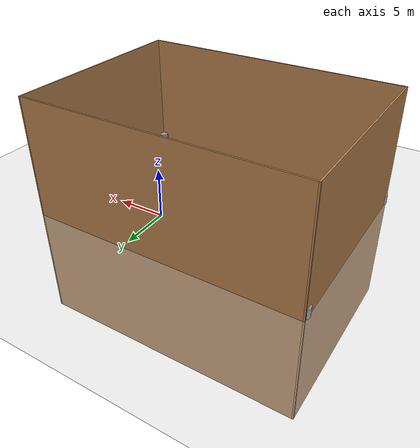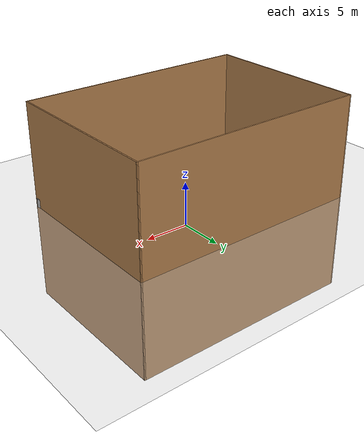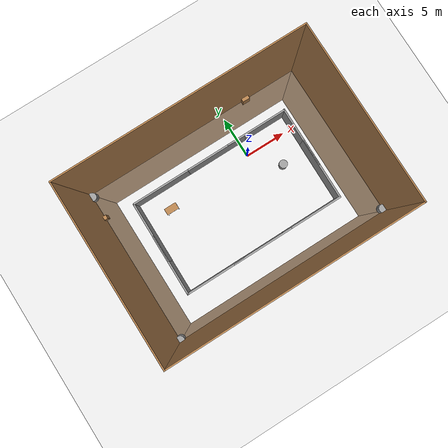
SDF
<sdf version="1.6">
 <world name="default">
  <light name="sun" type="directional">
   <pose>0 0 10 0 -0 0</pose>
   <diffuse>0.8 0.8 0.8 1</diffuse>
   <specular>0.2 0.2 0.2 1</specular>
   <attenuation>
    <range>1000</range>
    <constant>0.9</constant>
    <linear>0.01</linear>
    <quadratic>0.001</quadratic>
   </attenuation>
   <direction>-0.5 0.1 -0.9</direction>
  </light>
  <model name="ground_plane">
   <static>1</static>
   <link name="link">
    <collision name="collision">
     <geometry><plane><normal>0 0 1</normal><size>100 100</size></plane></geometry>
     <surface>
      <contact><collide_bitmask>65535</collide_bitmask></contact>
      <friction><ode><mu>100</mu><mu2>50</mu2></ode></friction>
     </surface>
    </collision>
    <visual name="visual">
     <cast_shadows>0</cast_shadows>
     <geometry><plane><normal>0 0 1</normal><size>100 100</size></plane></geometry>
     <material>
      <script><uri>file://media/materials/scripts/gazebo.material</uri><name>Gazebo/Grey</name></script>
     </material>
    </visual>
   </link>
  </model>
  <physics name="default_physics" default="0" type="ode">
   <real_time_update_rate>1000</real_time_update_rate>
   <max_step_size>0.001</max_step_size>
   <real_time_factor>1</real_time_factor>
   <ode>
    <solver>
     <type>quick</type>
     <iters>150</iters>
     <precon_iters>0</precon_iters>
     <sor>1.4</sor>
     <use_dynamic_moi_rescaling>1</use_dynamic_moi_rescaling>
    </solver>
    <constraints>
     <cfm>1e-05</cfm>
     <erp>0.2</erp>
     <contact_max_correcting_vel>2000</contact_max_correcting_vel>
     <contact_surface_layer>0.01</contact_surface_layer>
    </constraints>
   </ode>
  </physics>
  <scene><ambient>0.4 0.4 0.4 1</ambient><background>0.7 0.7 0.7 1</background><shadows>1</shadows></scene>
  <gravity>0 0 -9.8</gravity>
  <magnetic_field>6e-06 2.3e-05 -4.2e-05</magnetic_field>
  <atmosphere type="adiabatic"/>
  <audio><device>default</device></audio>
  <spherical_coordinates>
   <surface_model>EARTH_WGS84</surface_model>
   <latitude_deg>0</latitude_deg>
   <longitude_deg>0</longitude_deg>
   <elevation>0</elevation>
   <heading_deg>0</heading_deg>
  </spherical_coordinates>
  <model name="table">
   <static>1</static>
   <link name="link">
    <collision name="surface">
     <pose>0 0 1 0 -0 0</pose>
     <geometry><box><size>1.5 0.8 0.03</size></box></geometry>
     <surface><friction><ode><mu>0.6</mu><mu2>0.6</mu2></ode></friction></surface>
    </collision>
    <visual name="visual1">
     <pose>0 0 1 0 -0 0</pose>
     <geometry><box><size>1.5 0.8 0.03</size></box></geometry>
     <material>
      <script><uri>file://media/materials/scripts/gazebo.material</uri><name>Gazebo/Wood</name></script>
     </material>
    </visual>
    <collision name="front_left_leg">
     <pose>0.68 0.38 0.5 0 -0 0</pose>
     <geometry><cylinder><radius>0.02</radius><length>1</length></cylinder></geometry>
    </collision>
    <visual name="front_left_leg">
     <pose>0.68 0.38 0.5 0 -0 0</pose>
     <geometry><cylinder><radius>0.02</radius><length>1</length></cylinder></geometry>
     <material>
      <script><uri>file://media/materials/scripts/gazebo.material</uri><name>Gazebo/Grey</name></script>
     </material>
    </visual>
    <collision name="front_right_leg">
     <pose>0.68 -0.38 0.5 0 -0 0</pose>
     <geometry><cylinder><radius>0.02</radius><length>1</length></cylinder></geometry>
    </collision>
    <visual name="front_right_leg">
     <pose>0.68 -0.38 0.5 0 -0 0</pose>
     <geometry><cylinder><radius>0.02</radius><length>1</length></cylinder></geometry>
     <material>
      <script><uri>file://media/materials/scripts/gazebo.material</uri><name>Gazebo/Grey</name></script>
     </material>
    </visual>
    <collision name="back_right_leg">
     <pose>-0.68 -0.38 0.5 0 -0 0</pose>
     <geometry><cylinder><radius>0.02</radius><length>1</length></cylinder></geometry>
    </collision>
    <visual name="back_right_leg">
     <pose>-0.68 -0.38 0.5 0 -0 0</pose>
     <geometry><cylinder><radius>0.02</radius><length>1</length></cylinder></geometry>
     <material>
      <script><uri>file://media/materials/scripts/gazebo.material</uri><name>Gazebo/Grey</name></script>
     </material>
    </visual>
    <collision name="back_left_leg">
     <pose>-0.68 0.38 0.5 0 -0 0</pose>
     <geometry><cylinder><radius>0.02</radius><length>1</length></cylinder></geometry>
    </collision>
    <visual name="back_left_leg">
     <pose>-0.68 0.38 0.5 0 -0 0</pose>
     <geometry><cylinder><radius>0.02</radius><length>1</length></cylinder></geometry>
     <material>
      <script><uri>file://media/materials/scripts/gazebo.material</uri><name>Gazebo/Grey</name></script>
     </material>
    </visual>
   </link>
   <pose>-10.6602 -0.66656 0 0 -0 0</pose>
  </model>
  <model name="unit_cylinder">
   <pose>2.90044 -3.15225 0.499991 0 -0 0</pose>
   <link name="link">
    <inertial>
     <mass>1</mass>
     <inertia><ixx>0.145833</ixx><ixy>0</ixy><ixz>0</ixz><iyy>0.145833</iyy><iyz>0</iyz><izz>0.125</izz></inertia>
    </inertial>
    <collision name="collision">
     <geometry><cylinder><radius>0.5</radius><length>1</length></cylinder></geometry>
    </collision>
    <visual name="visual">
     <geometry><cylinder><radius>0.5</radius><length>1</length></cylinder></geometry>
     <material>
      <script><name>Gazebo/Grey</name><uri>file://media/materials/scripts/gazebo.material</uri></script>
     </material>
    </visual>
   </link>
  </model>
  <model name="grey_wall">
   <static>1</static>
   <link name="link">
    <pose>0 0 1.4 0 -0 0</pose>
    <collision name="collision"><geometry><box><size>7.5 0.2 2.8</size></box></geometry></collision>
    <visual name="visual">
     <cast_shadows>0</cast_shadows>
     <geometry><box><size>7.5 0.2 2.8</size></box></geometry>
     <material>
      <script>
       <uri>model://grey_wall/materials/scripts</uri>
       <uri>model://grey_wall/materials/textures</uri>
       <name>vrc/grey_wall</name>
      </script>
     </material>
    </visual>
   </link>
   <pose>-10.0518 1.77392 0 0 -0 0</pose>
  </model>
  <model name="bookshelf">
   <static>1</static>
   <link name="link">
    <inertial><mass>1</mass></inertial>
    <collision name="back">
     <pose>0 0.005 0.6 0 -0 0</pose>
     <geometry><box><size>0.9 0.01 1.2</size></box></geometry>
    </collision>
    <visual name="visual1">
     <pose>0 0.005 0.6 0 -0 0</pose>
     <geometry><box><size>0.9 0.01 1.2</size></box></geometry>
     <material>
      <script><uri>file://media/materials/scripts/gazebo.material</uri><name>Gazebo/Wood</name></script>
     </material>
    </visual>
    <collision name="left_side">
     <pose>0.45 -0.195 0.6 0 -0 0</pose>
     <geometry><box><size>0.02 0.4 1.2</size></box></geometry>
    </collision>
    <visual name="visual2">
     <pose>0.45 -0.195 0.6 0 -0 0</pose>
     <geometry><box><size>0.02 0.4 1.2</size></box></geometry>
     <material>
      <script><uri>file://media/materials/scripts/gazebo.material</uri><name>Gazebo/Wood</name></script>
     </material>
    </visual>
    <collision name="right_side">
     <pose>-0.45 -0.195 0.6 0 -0 0</pose>
     <geometry><box><size>0.02 0.4 1.2</size></box></geometry>
    </collision>
    <visual name="visual3">
     <pose>-0.45 -0.195 0.6 0 -0 0</pose>
     <geometry><box><size>0.02 0.4 1.2</size></box></geometry>
     <material>
      <script><uri>file://media/materials/scripts/gazebo.material</uri><name>Gazebo/Wood</name></script>
     </material>
    </visual>
    <collision name="bottom">
     <pose>0 -0.195 0.03 0 -0 0</pose>
     <geometry><box><size>0.88 0.4 0.06</size></box></geometry>
    </collision>
    <visual name="visual4">
     <pose>0 -0.195 0.03 0 -0 0</pose>
     <geometry><box><size>0.88 0.4 0.06</size></box></geometry>
     <material>
      <script><uri>file://media/materials/scripts/gazebo.material</uri><name>Gazebo/Wood</name></script>
     </material>
    </visual>
    <collision name="top">
     <pose>0 -0.195 1.19 0 -0 0</pose>
     <geometry><box><size>0.88 0.4 0.02</size></box></geometry>
    </collision>
    <visual name="visual5">
     <pose>0 -0.195 1.19 0 -0 0</pose>
     <geometry><box><size>0.88 0.4 0.02</size></box></geometry>
     <material>
      <script><uri>file://media/materials/scripts/gazebo.material</uri><name>Gazebo/Wood</name></script>
     </material>
    </visual>
    <collision name="low_shelf">
     <pose>0 -0.195 0.43 0 -0 0</pose>
     <geometry><box><size>0.88 0.4 0.02</size></box></geometry>
    </collision>
    <visual name="visual6">
     <pose>0 -0.195 0.43 0 -0 0</pose>
     <geometry><box><size>0.88 0.4 0.02</size></box></geometry>
     <material>
      <script><uri>file://media/materials/scripts/gazebo.material</uri><name>Gazebo/Wood</name></script>
     </material>
    </visual>
    <collision name="high_shelf">
     <pose>0 -0.195 0.8 0 -0 0</pose>
     <geometry><box><size>0.88 0.4 0.02</size></box></geometry>
    </collision>
    <visual name="visual7">
     <pose>0 -0.195 0.8 0 -0 0</pose>
     <geometry><box><size>0.88 0.4 0.02</size></box></geometry>
     <material>
      <script><uri>file://media/materials/scripts/gazebo.material</uri><name>Gazebo/Wood</name></script>
     </material>
    </visual>
   </link>
   <pose>3.30092 5.40007 0 0 -0 3.11872</pose>
  </model>
  <model name="cabinet">
   <static>1</static>
   <link name="cabinet_bottom_plate">
    <inertial>
     <pose>0 0 -1 0 -0 0</pose>
     <inertia><ixx>2.05</ixx><ixy>0</ixy><ixz>0</ixz><iyy>2.05</iyy><iyz>0</iyz><izz>2.05</izz></inertia>
     <mass>25</mass>
    </inertial>
    <collision name="cabinet_bottom_plate_geom">
     <pose>0 0 0.01 0 -0 0</pose>
     <geometry><box><size>0.45 0.45 0.02</size></box></geometry>
    </collision>
    <visual name="cabinet_bottom_plate_geom_visual">
     <pose>0 0 0.01 0 -0 0</pose>
     <geometry><box><size>0.45 0.45 0.02</size></box></geometry>
     <material>
      <script><uri>file://media/materials/scripts/gazebo.material</uri><name>Gazebo/Wood</name></script>
     </material>
    </visual>
    <collision name="cabinet_bottom_plate_geom_cabinet_back_plate">
     <pose>0.235 0 0.51 0 -0 0</pose>
     <geometry><box><size>0.02 0.45 1.02</size></box></geometry>
    </collision>
    <visual name="cabinet_bottom_plate_geom_cabinet_back_plate_visual">
     <pose>0.235 0 0.51 0 -0 0</pose>
     <geometry><box><size>0.02 0.45 1.02</size></box></geometry>
     <material>
      <script><uri>file://media/materials/scripts/gazebo.material</uri><name>Gazebo/Wood</name></script>
     </material>
    </visual>
    <collision name="cabinet_bottom_plate_geom_cabinet_left_plate">
     <pose>0 0.235 0.51 0 -0 0</pose>
     <geometry><box><size>0.45 0.02 1.02</size></box></geometry>
    </collision>
    <visual name="cabinet_bottom_plate_geom_cabinet_left_plate_visual">
     <pose>0 0.235 0.51 0 -0 0</pose>
     <geometry><box><size>0.45 0.02 1.02</size></box></geometry>
     <material>
      <script><uri>file://media/materials/scripts/gazebo.material</uri><name>Gazebo/Wood</name></script>
     </material>
    </visual>
    <collision name="cabinet_bottom_plate_geom_cabinet_middle_plate">
     <pose>0 0 0.51 0 -0 0</pose>
     <geometry><box><size>0.45 0.45 0.02</size></box></geometry>
    </collision>
    <visual name="cabinet_bottom_plate_geom_cabinet_middle_plate_visual">
     <pose>0 0 0.51 0 -0 0</pose>
     <geometry><box><size>0.45 0.45 0.02</size></box></geometry>
     <material>
      <script><uri>file://media/materials/scripts/gazebo.material</uri><name>Gazebo/Wood</name></script>
     </material>
    </visual>
    <collision name="cabinet_bottom_plate_geom_cabinet_right_plate">
     <pose>0 -0.235 0.51 0 -0 0</pose>
     <geometry><box><size>0.45 0.02 1.02</size></box></geometry>
    </collision>
    <visual name="cabinet_bottom_plate_geom_cabinet_right_plate_visual">
     <pose>0 -0.235 0.51 0 -0 0</pose>
     <geometry><box><size>0.45 0.02 1.02</size></box></geometry>
     <material>
      <script><uri>file://media/materials/scripts/gazebo.material</uri><name>Gazebo/Wood</name></script>
     </material>
    </visual>
    <collision name="cabinet_bottom_plate_geom_cabinet_top_plate">
     <pose>0 0 1.01 0 -0 0</pose>
     <geometry><box><size>0.45 0.45 0.02</size></box></geometry>
    </collision>
    <visual name="cabinet_bottom_plate_geom_cabinet_top_plate_visual">
     <pose>0 0 1.01 0 -0 0</pose>
     <geometry><box><size>0.45 0.45 0.02</size></box></geometry>
     <material>
      <script><uri>file://media/materials/scripts/gazebo.material</uri><name>Gazebo/Wood</name></script>
     </material>
    </visual>
   </link>
   <pose>-17.5791 2.52988 0 0 -0 0</pose>
  </model>
  <model name="grey_wall_clone">
   <static>1</static>
   <link name="link">
    <pose>0 0 1.4 0 -0 0</pose>
    <collision name="collision"><geometry><box><size>7.5 0.2 2.8</size></box></geometry></collision>
    <visual name="visual">
     <cast_shadows>0</cast_shadows>
     <geometry><box><size>7.5 0.2 2.8</size></box></geometry>
     <material>
      <script>
       <uri>model://grey_wall/materials/scripts</uri>
       <uri>model://grey_wall/materials/textures</uri>
       <name>vrc/grey_wall</name>
      </script>
     </material>
    </visual>
   </link>
   <pose>-2.99019 1.76894 0 0 -0 0</pose>
  </model>
  <model name="grey_wall_clone_0">
   <static>1</static>
   <link name="link">
    <pose>0 0 1.4 0 -0 0</pose>
    <collision name="collision"><geometry><box><size>7.5 0.2 2.8</size></box></geometry></collision>
    <visual name="visual">
     <cast_shadows>0</cast_shadows>
     <geometry><box><size>7.5 0.2 2.8</size></box></geometry>
     <material>
      <script>
       <uri>model://grey_wall/materials/scripts</uri>
       <uri>model://grey_wall/materials/textures</uri>
       <name>vrc/grey_wall</name>
      </script>
     </material>
    </visual>
   </link>
   <pose>5.90969 -5.98301 0 0 0 -1.58016</pose>
  </model>
  <model name="grey_wall_clone_1">
   <static>1</static>
   <link name="link">
    <pose>0 0 1.4 0 -0 0</pose>
    <collision name="collision"><geometry><box><size>7.5 0.2 2.8</size></box></geometry></collision>
    <visual name="visual">
     <cast_shadows>0</cast_shadows>
     <geometry><box><size>7.5 0.2 2.8</size></box></geometry>
     <material>
      <script>
       <uri>model://grey_wall/materials/scripts</uri>
       <uri>model://grey_wall/materials/textures</uri>
       <name>vrc/grey_wall</name>
      </script>
     </material>
    </visual>
   </link>
   <pose>2.24582 1.77207 0 0 -0 0</pose>
  </model>
  <model name="grey_wall_clone_2">
   <static>1</static>
   <link name="link">
    <pose>0 0 1.4 0 -0 0</pose>
    <collision name="collision"><geometry><box><size>7.5 0.2 2.8</size></box></geometry></collision>
    <visual name="visual">
     <cast_shadows>0</cast_shadows>
     <geometry><box><size>7.5 0.2 2.8</size></box></geometry>
     <material>
      <script>
       <uri>model://grey_wall/materials/scripts</uri>
       <uri>model://grey_wall/materials/textures</uri>
       <name>vrc/grey_wall</name>
      </script>
     </material>
    </visual>
   </link>
   <pose>2.22756 -9.76097 0 0 -0 0</pose>
  </model>
  <model name="grey_wall_clone_3">
   <static>1</static>
   <link name="link">
    <pose>0 0 1.4 0 -0 0</pose>
    <collision name="collision"><geometry><box><size>7.5 0.2 2.8</size></box></geometry></collision>
    <visual name="visual">
     <cast_shadows>0</cast_shadows>
     <geometry><box><size>7.5 0.2 2.8</size></box></geometry>
     <material>
      <script>
       <uri>model://grey_wall/materials/scripts</uri>
       <uri>model://grey_wall/materials/textures</uri>
       <name>vrc/grey_wall</name>
      </script>
     </material>
    </visual>
   </link>
   <pose>-10.2351 -9.7611 0 0 -0 0</pose>
  </model>
  <model name="grey_wall_clone_4">
   <static>1</static>
   <link name="link">
    <pose>0 0 1.4 0 -0 0</pose>
    <collision name="collision"><geometry><box><size>7.5 0.2 2.8</size></box></geometry></collision>
    <visual name="visual">
     <cast_shadows>0</cast_shadows>
     <geometry><box><size>7.5 0.2 2.8</size></box></geometry>
     <material>
      <script>
       <uri>model://grey_wall/materials/scripts</uri>
       <uri>model://grey_wall/materials/textures</uri>
       <name>vrc/grey_wall</name>
      </script>
     </material>
    </visual>
   </link>
   <pose>-4.23695 -9.77029 0 0 -0 0</pose>
  </model>
  <model name="grey_wall_clone_0_clone">
   <static>1</static>
   <link name="link">
    <pose>0 0 1.4 0 -0 0</pose>
    <collision name="collision"><geometry><box><size>7.5 0.2 2.8</size></box></geometry></collision>
    <visual name="visual">
     <cast_shadows>0</cast_shadows>
     <geometry><box><size>7.5 0.2 2.8</size></box></geometry>
     <material>
      <script>
       <uri>model://grey_wall/materials/scripts</uri>
       <uri>model://grey_wall/materials/textures</uri>
       <name>vrc/grey_wall</name>
      </script>
     </material>
    </visual>
   </link>
   <pose>5.96015 -1.84142 0 0 0 -1.58016</pose>
  </model>
  <model name="grey_wall_clone_0_clone_0">
   <static>1</static>
   <link name="link">
    <pose>0 0 1.4 0 -0 0</pose>
    <collision name="collision"><geometry><box><size>7.5 0.2 2.8</size></box></geometry></collision>
    <visual name="visual">
     <cast_shadows>0</cast_shadows>
     <geometry><box><size>7.5 0.2 2.8</size></box></geometry>
     <material>
      <script>
       <uri>model://grey_wall/materials/scripts</uri>
       <uri>model://grey_wall/materials/textures</uri>
       <name>vrc/grey_wall</name>
      </script>
     </material>
    </visual>
   </link>
   <pose>-13.8747 -6.07798 0 0 0 -1.58016</pose>
  </model>
  <model name="grey_wall_clone_0_clone_1">
   <static>1</static>
   <link name="link">
    <pose>0 0 1.4 0 -0 0</pose>
    <collision name="collision"><geometry><box><size>7.5 0.2 2.8</size></box></geometry></collision>
    <visual name="visual">
     <cast_shadows>0</cast_shadows>
     <geometry><box><size>7.5 0.2 2.8</size></box></geometry>
     <material>
      <script>
       <uri>model://grey_wall/materials/scripts</uri>
       <uri>model://grey_wall/materials/textures</uri>
       <name>vrc/grey_wall</name>
      </script>
     </material>
    </visual>
   </link>
   <pose>-13.8146 -1.92038 0 0 0 -1.58016</pose>
  </model>
  <model name="unit_cylinder_clone">
   <pose>9.71024 -13.5451 0.499991 0 -0 0</pose>
   <link name="link">
    <inertial>
     <mass>1</mass>
     <inertia><ixx>0.145833</ixx><ixy>0</ixy><ixz>0</ixz><iyy>0.145833</iyy><iyz>0</iyz><izz>0.125</izz></inertia>
    </inertial>
    <collision name="collision">
     <geometry><cylinder><radius>0.5</radius><length>1</length></cylinder></geometry>
    </collision>
    <visual name="visual">
     <geometry><cylinder><radius>0.5</radius><length>1</length></cylinder></geometry>
     <material>
      <script><name>Gazebo/Grey</name><uri>file://media/materials/scripts/gazebo.material</uri></script>
     </material>
    </visual>
   </link>
  </model>
  <model name="unit_cylinder_clone_0">
   <pose>-17.5599 -13.6832 0.499991 0 -0 0</pose>
   <link name="link">
    <inertial>
     <mass>1</mass>
     <inertia><ixx>0.145833</ixx><ixy>0</ixy><ixz>0</ixz><iyy>0.145833</iyy><iyz>0</iyz><izz>0.125</izz></inertia>
    </inertial>
    <collision name="collision">
     <geometry><cylinder><radius>0.5</radius><length>1</length></cylinder></geometry>
    </collision>
    <visual name="visual">
     <geometry><cylinder><radius>0.5</radius><length>1</length></cylinder></geometry>
     <material>
      <script><name>Gazebo/Grey</name><uri>file://media/materials/scripts/gazebo.material</uri></script>
     </material>
    </visual>
   </link>
  </model>
  <model name="unit_cylinder_clone_1">
   <pose>-17.5973 5.3144 0.499993 4e-06 -4e-06 1e-06</pose>
   <link name="link">
    <inertial>
     <mass>1</mass>
     <inertia><ixx>0.145833</ixx><ixy>0</ixy><ixz>0</ixz><iyy>0.145833</iyy><iyz>0</iyz><izz>0.125</izz></inertia>
    </inertial>
    <collision name="collision">
     <geometry><cylinder><radius>0.5</radius><length>1</length></cylinder></geometry>
    </collision>
    <visual name="visual">
     <geometry><cylinder><radius>0.5</radius><length>1</length></cylinder></geometry>
     <material>
      <script><name>Gazebo/Grey</name><uri>file://media/materials/scripts/gazebo.material</uri></script>
     </material>
    </visual>
   </link>
  </model>
  <model name="turtlebot3_square">
   <link name="Wall_0">
    <pose>0 1.925 0 0 -0 0</pose>
    <inertial>
     <mass>1</mass>
     <inertia><ixx>1</ixx><ixy>0</ixy><ixz>0</ixz><iyy>1</iyy><iyz>0</iyz><izz>1</izz></inertia>
    </inertial>
    <visual name="Wall_0_Visual">
     <pose>-2 0 0.25 0 -0 0</pose>
     <geometry><box><size>28 0.15 24</size></box></geometry>
     <material>
      <script><uri>file://media/materials/scripts/gazebo.material</uri><name>Gazebo/Wood</name></script>
      <ambient>1 1 1 1</ambient>
      <shader type="vertex"><normal_map>__default__</normal_map></shader>
      <diffuse>1 1 1 1</diffuse>
      <specular>0.2 0.2 0.2 1</specular>
      <emissive>0 0 0 1</emissive>
     </material>
    </visual>
    <collision name="Wall_0_Collision">
     <pose>-2 0 0.25 0 -0 0</pose>
     <geometry><box><size>28 0.15 24</size></box></geometry>
     <surface>
      <friction>
       <ode><mu>1</mu><mu2>1</mu2><fdir1>0 0 0</fdir1><slip1>0</slip1><slip2>0</slip2></ode>
       <torsional>
        <coefficient>1</coefficient>
        <patch_radius>0</patch_radius>
        <surface_radius>0</surface_radius>
        <use_patch_radius>1</use_patch_radius>
        <ode><slip>0</slip></ode>
       </torsional>
      </friction>
      <bounce><restitution_coefficient>0</restitution_coefficient><threshold>1e+06</threshold></bounce>
      <contact>
       <collide_without_contact>0</collide_without_contact>
       <collide_without_contact_bitmask>1</collide_without_contact_bitmask>
       <collide_bitmask>1</collide_bitmask>
       <ode>
        <soft_cfm>0</soft_cfm>
        <soft_erp>0.2</soft_erp>
        <kp>1e+13</kp>
        <kd>1</kd>
        <max_vel>0.01</max_vel>
        <min_depth>0</min_depth>
       </ode>
       <bullet>
        <split_impulse>1</split_impulse>
        <split_impulse_penetration_threshold>-0.01</split_impulse_penetration_threshold>
        <soft_cfm>0</soft_cfm>
        <soft_erp>0.2</soft_erp>
        <kp>1e+13</kp>
        <kd>1</kd>
       </bullet>
      </contact>
     </surface>
    </collision>
   </link>
   <link name="Wall_2">
    <pose>-1.925 0 0 0 0 -1.5708</pose>
    <inertial>
     <mass>1</mass>
     <inertia><ixx>1</ixx><ixy>0</ixy><ixz>0</ixz><iyy>1</iyy><iyz>0</iyz><izz>1</izz></inertia>
    </inertial>
    <visual name="Wall_2_Visual">
     <pose>8 -14 0.25 0 -0 0</pose>
     <geometry><box><size>20 0.15 24</size></box></geometry>
     <material>
      <script><uri>file://media/materials/scripts/gazebo.material</uri><name>Gazebo/Wood</name></script>
      <ambient>1 1 1 1</ambient>
      <shader type="vertex"><normal_map>__default__</normal_map></shader>
      <diffuse>1 1 1 1</diffuse>
      <specular>0.2 0.2 0.2 1</specular>
      <emissive>0 0 0 1</emissive>
     </material>
    </visual>
    <collision name="Wall_2_Collision">
     <pose>8 -14 0.25 0 -0 0</pose>
     <geometry><box><size>20 0.15 24</size></box></geometry>
     <surface>
      <friction>
       <ode><mu>1</mu><mu2>1</mu2><fdir1>0 0 0</fdir1><slip1>0</slip1><slip2>0</slip2></ode>
       <torsional>
        <coefficient>1</coefficient>
        <patch_radius>0</patch_radius>
        <surface_radius>0</surface_radius>
        <use_patch_radius>1</use_patch_radius>
        <ode><slip>0</slip></ode>
       </torsional>
      </friction>
      <bounce><restitution_coefficient>0</restitution_coefficient><threshold>1e+06</threshold></bounce>
      <contact>
       <collide_without_contact>0</collide_without_contact>
       <collide_without_contact_bitmask>1</collide_without_contact_bitmask>
       <collide_bitmask>1</collide_bitmask>
       <ode>
        <soft_cfm>0</soft_cfm>
        <soft_erp>0.2</soft_erp>
        <kp>1e+13</kp>
        <kd>1</kd>
        <max_vel>0.01</max_vel>
        <min_depth>0</min_depth>
       </ode>
       <bullet>
        <split_impulse>1</split_impulse>
        <split_impulse_penetration_threshold>-0.01</split_impulse_penetration_threshold>
        <soft_cfm>0</soft_cfm>
        <soft_erp>0.2</soft_erp>
        <kp>1e+13</kp>
        <kd>1</kd>
       </bullet>
      </contact>
     </surface>
    </collision>
   </link>
   <link name="Wall_3">
    <pose>0 -1.925 0 0 -0 0</pose>
    <inertial>
     <mass>1</mass>
     <inertia><ixx>1</ixx><ixy>0</ixy><ixz>0</ixz><iyy>1</iyy><iyz>0</iyz><izz>1</izz></inertia>
    </inertial>
    <visual name="Wall_3_Visual">
     <pose>-2 -16 0.25 0 -0 0</pose>
     <geometry><box><size>28 0.15 24</size></box></geometry>
     <material>
      <script><uri>file://media/materials/scripts/gazebo.material</uri><name>Gazebo/Wood</name></script>
      <ambient>1 1 1 1</ambient>
      <emissive>0 0 0 1</emissive>
      <shader type="vertex"><normal_map>__default__</normal_map></shader>
      <diffuse>1 1 1 1</diffuse>
      <specular>0.2 0.2 0.2 1</specular>
     </material>
    </visual>
    <collision name="Wall_3_Collision">
     <pose>-2 -16 0.25 0 -0 0</pose>
     <geometry><box><size>28 0.15 24</size></box></geometry>
     <surface>
      <friction>
       <ode><mu>1</mu><mu2>1</mu2><fdir1>0 0 0</fdir1><slip1>0</slip1><slip2>0</slip2></ode>
       <torsional>
        <coefficient>1</coefficient>
        <patch_radius>0</patch_radius>
        <surface_radius>0</surface_radius>
        <use_patch_radius>1</use_patch_radius>
        <ode><slip>0</slip></ode>
       </torsional>
      </friction>
      <bounce><restitution_coefficient>0</restitution_coefficient><threshold>1e+06</threshold></bounce>
      <contact>
       <collide_without_contact>0</collide_without_contact>
       <collide_without_contact_bitmask>1</collide_without_contact_bitmask>
       <collide_bitmask>1</collide_bitmask>
       <ode>
        <soft_cfm>0</soft_cfm>
        <soft_erp>0.2</soft_erp>
        <kp>1e+13</kp>
        <kd>1</kd>
        <max_vel>0.01</max_vel>
        <min_depth>0</min_depth>
       </ode>
       <bullet>
        <split_impulse>1</split_impulse>
        <split_impulse_penetration_threshold>-0.01</split_impulse_penetration_threshold>
        <soft_cfm>0</soft_cfm>
        <soft_erp>0.2</soft_erp>
        <kp>1e+13</kp>
        <kd>1</kd>
       </bullet>
      </contact>
     </surface>
    </collision>
   </link>
   <link name="Wall_4">
    <pose>1.925 0 0 0 -0 1.5708</pose>
    <inertial>
     <mass>1</mass>
     <inertia><ixx>1</ixx><ixy>0</ixy><ixz>0</ixz><iyy>1</iyy><iyz>0</iyz><izz>1</izz></inertia>
    </inertial>
    <visual name="Wall_4_Visual">
     <pose>-8 -10 0.25 0 -0 0</pose>
     <geometry><box><size>20 0.15 24</size></box></geometry>
     <material>
      <script><uri>file://media/materials/scripts/gazebo.material</uri><name>Gazebo/Wood</name></script>
      <ambient>1 1 1 1</ambient>
      <shader type="vertex"><normal_map>__default__</normal_map></shader>
      <diffuse>1 1 1 1</diffuse>
      <specular>0.2 0.2 0.2 1</specular>
      <emissive>0 0 0 1</emissive>
     </material>
    </visual>
    <collision name="Wall_4_Collision">
     <pose>-8 -10 0.27 0 -0 0</pose>
     <geometry><box><size>20 0.15 24</size></box></geometry>
     <surface>
      <friction>
       <ode><mu>1</mu><mu2>1</mu2><fdir1>0 0 0</fdir1><slip1>0</slip1><slip2>0</slip2></ode>
       <torsional>
        <coefficient>1</coefficient>
        <patch_radius>0</patch_radius>
        <surface_radius>0</surface_radius>
        <use_patch_radius>1</use_patch_radius>
        <ode><slip>0</slip></ode>
       </torsional>
      </friction>
      <bounce><restitution_coefficient>0</restitution_coefficient><threshold>1e+06</threshold></bounce>
      <contact>
       <collide_without_contact>0</collide_without_contact>
       <collide_without_contact_bitmask>1</collide_without_contact_bitmask>
       <collide_bitmask>1</collide_bitmask>
       <ode>
        <soft_cfm>0</soft_cfm>
        <soft_erp>0.2</soft_erp>
        <kp>1e+13</kp>
        <kd>1</kd>
        <max_vel>0.01</max_vel>
        <min_depth>0</min_depth>
       </ode>
       <bullet>
        <split_impulse>1</split_impulse>
        <split_impulse_penetration_threshold>-0.01</split_impulse_penetration_threshold>
        <soft_cfm>0</soft_cfm>
        <soft_erp>0.2</soft_erp>
        <kp>1e+13</kp>
        <kd>1</kd>
       </bullet>
      </contact>
     </surface>
    </collision>
   </link>
   <static>1</static>
   <pose>-1.91337 3.9644 0 0 -0 0</pose>
  </model>
 </world>
</sdf>
